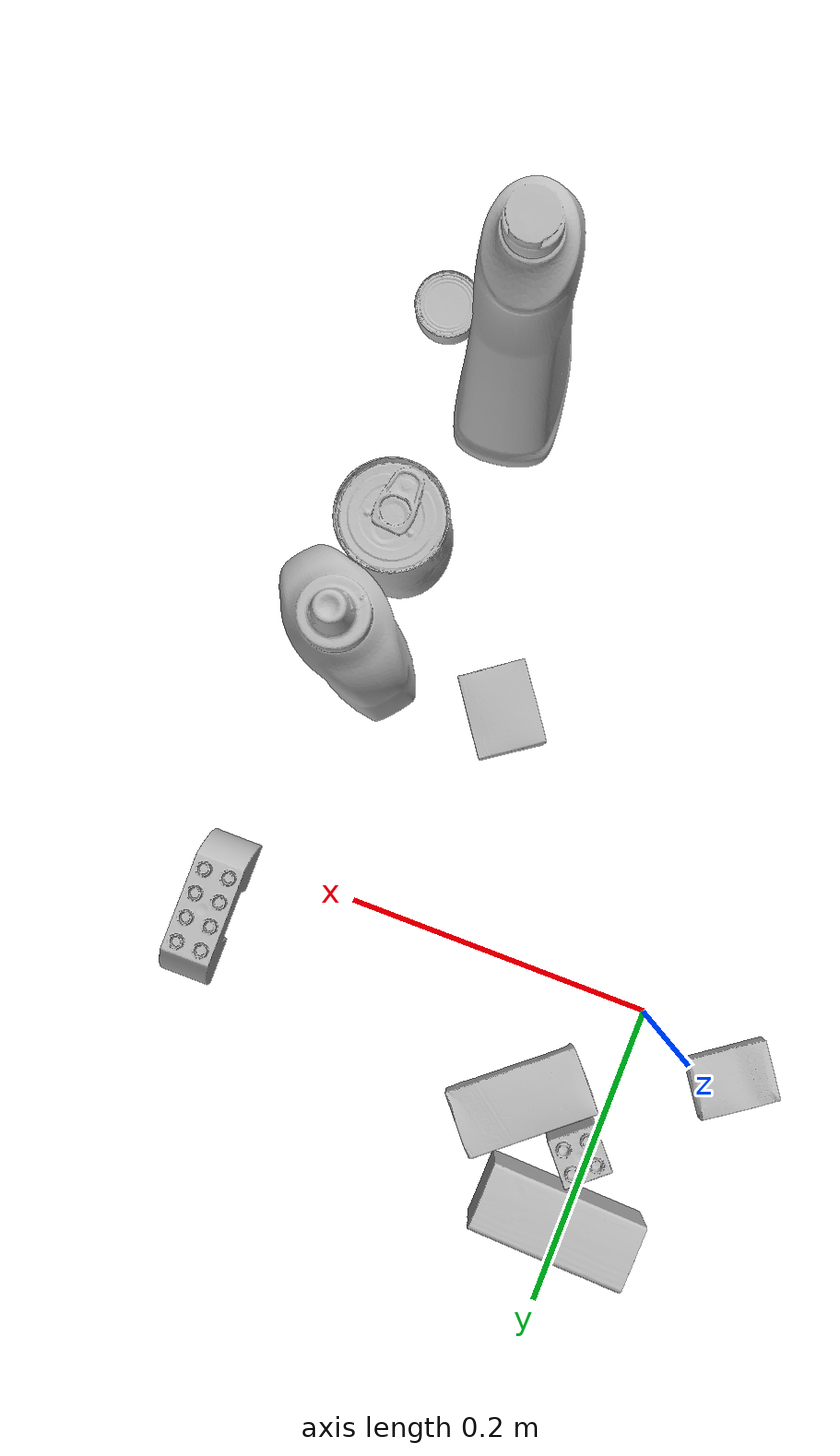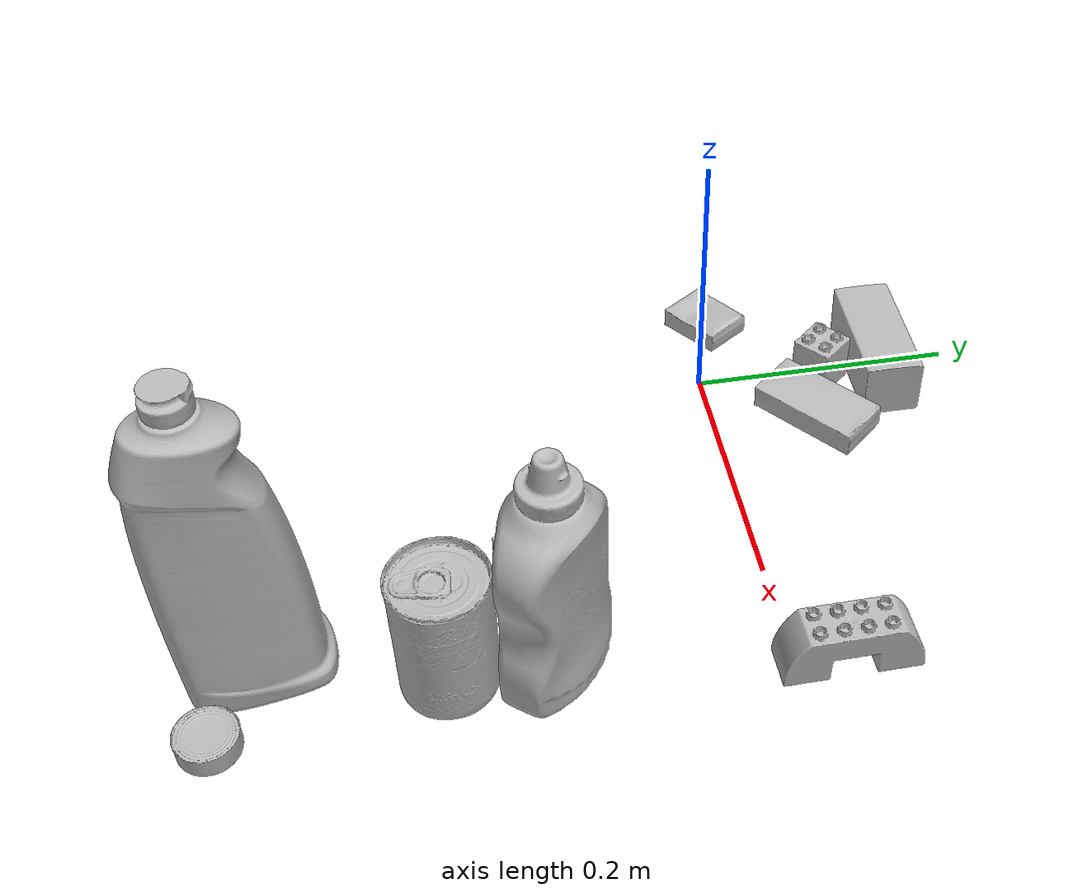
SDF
<sdf version="1.4">
  <world name="default">
    <light name="light1" type="point">
      <pose>0 0 1 0 0 0</pose>
      <diffuse>3 3 3 1</diffuse>
      <specular>3 3 3 1</specular>
    </light>
    <light name="light2" type="point">
      <pose>0 0.5 2 0 0 0</pose>
      <diffuse>1 1 1 1</diffuse>
      <specular>1 1 1 1</specular>
    </light>
    <light name="light3" type="point">
      <pose>0 0.5 2 0 0 0</pose>
      <diffuse>3 3 3 1</diffuse>
      <specular>3 3 3 1</specular>
    </light>
    <scene>
      <ambient>0.7 0.7 0.7</ambient>
    </scene>
    <model name="bottle1">
      <link name="link_bottle1">
        <collision name="default">
          <geometry>
            <mesh>
              <uri>model://bleach_cleanser/collision_meshes/collision.obj</uri>
              <scale>1.0 1.0 1.0</scale>
            </mesh>
          </geometry>
          <surface>
            <friction>
              <ode>
                <mu>0.5</mu>
                <mu2>0.5</mu2>
              </ode>
            </friction>
          <contact>
        <ode>
            <max_vel>0</max_vel>
            <min_depth>0.0001</min_depth>
            <kp>1e8</kp>
        </ode>
    </contact></surface>
        </collision>
        <visual name="default">
          <geometry>
            <mesh>
              <uri>model://bleach_cleanser/visual_meshes/visual.dae</uri>
              <scale>1.0 1.0 1.0</scale>
            </mesh>
          </geometry>
        </visual>
        <inertial>
          <mass>0.7954697608947754</mass>
          <pose>0.00012193184375064448 0.0037838825955986977 -0.02442161552608013 -0.0738167061583634 0.000420116841178447 -0.006875049257496471</pose>
          <inertia>
            <ixx>0.003871667</ixx>
            <iyy>0.0036078263</iyy>
            <izz>0.00066195446</izz>
            <ixy>0</ixy>
            <ixz>0</ixz>
            <iyz>0</iyz>
          </inertia>
        </inertial>
      </link>
      <pose>0.22141771018505096 -0.34552663564682007 0.1261208951473236 -0.004142527638943772 0.008030826901080632 -2.975127468273459</pose>
    </model>
    <model name="bottle2">
      <link name="link_bottle2">
        <collision name="default">
          <geometry>
            <mesh>
              <uri>model://mustard_bottle/collision_meshes/collision.obj</uri>
              <scale>1.0 1.0 1.0</scale>
            </mesh>
          </geometry>
          <surface>
            <friction>
              <ode>
                <mu>0.5</mu>
                <mu2>0.5</mu2>
              </ode>
            </friction>
          <contact>
        <ode>
            <max_vel>0</max_vel>
            <min_depth>0.0001</min_depth>
            <kp>1e8</kp>
        </ode>
    </contact></surface>
        </collision>
        <visual name="default">
          <geometry>
            <mesh>
              <uri>model://mustard_bottle/visual_meshes/visual.dae</uri>
              <scale>1.0 1.0 1.0</scale>
            </mesh>
          </geometry>
        </visual>
        <inertial>
          <mass>0.5118113160133362</mass>
          <pose>0.0005032453336752951 -0.00015647397958673537 -0.017475785687565804 0.0004182313596805905 0.000946575919178121 0.024853765212265823</pose>
          <inertia>
            <ixx>0.00142123</ixx>
            <iyy>0.0012470091</iyy>
            <izz>0.0003745659</izz>
            <ixy>0</ixy>
            <ixz>0</ixz>
            <iyz>0</iyz>
          </inertia>
        </inertial>
      </link>
      <pose>0.25392913818359375 -0.15316496789455414 0.09614987671375275 0.0006394862115374166 -0.0006255322555996292 0.875232582570888</pose>
    </model>
    <model name="toy1">
      <link name="link_toy1">
        <collision name="default">
          <geometry>
            <mesh>
              <uri>model://b_lego_duplo/collision_meshes/collision.obj</uri>
              <scale>1.0 1.0 1.0</scale>
            </mesh>
          </geometry>
          <surface>
            <friction>
              <ode>
                <mu>0.5</mu>
                <mu2>0.5</mu2>
              </ode>
            </friction>
          <contact>
        <ode>
            <max_vel>0</max_vel>
            <min_depth>0.0001</min_depth>
            <kp>1e8</kp>
        </ode>
    </contact></surface>
        </collision>
        <visual name="default">
          <geometry>
            <mesh>
              <uri>model://b_lego_duplo/visual_meshes/visual.dae</uri>
              <scale>1.0 1.0 1.0</scale>
            </mesh>
          </geometry>
        </visual>
        <inertial>
          <mass>0.04622781649231911</mass>
          <pose>-0.00011053043272113428 -9.152668098977301e-06 0.0019294294761493802 -0.037494565787594906 -0.026354503997733224 0.45188645636516256</pose>
          <inertia>
            <ixx>9.46087e-06</ixx>
            <iyy>9.524471e-06</iyy>
            <izz>8.429326e-06</izz>
            <ixy>0</ixy>
            <ixz>0</ixz>
            <iyz>0</iyz>
          </inertia>
        </inertial>
      </link>
      <pose>0.01014088187366724 0.09498129785060883 0.02181508205831051 5.389165495721697e-05 -4.996588898379033e-05 -0.8631174054426511</pose>
    </model>
    <model name="toy2">
      <link name="link_toy2">
        <collision name="default">
          <geometry>
            <mesh>
              <uri>model://e_lego_duplo/collision_meshes/collision.obj</uri>
              <scale>1.0 1.0 1.0</scale>
            </mesh>
          </geometry>
          <surface>
            <friction>
              <ode>
                <mu>0.5</mu>
                <mu2>0.5</mu2>
              </ode>
            </friction>
          <contact>
        <ode>
            <max_vel>0</max_vel>
            <min_depth>0.0001</min_depth>
            <kp>1e8</kp>
        </ode>
    </contact></surface>
        </collision>
        <visual name="default">
          <geometry>
            <mesh>
              <uri>model://e_lego_duplo/visual_meshes/visual.dae</uri>
              <scale>1.0 1.0 1.0</scale>
            </mesh>
          </geometry>
        </visual>
        <inertial>
          <mass>0.08809097856283188</mass>
          <pose>0.00032560486579313874 0.00023485404381062835 0.0019521467620506883 -0.022567425824888195 -6.82459351116558e-05 -0.007625145117383363</pose>
          <inertia>
            <ixx>1.836988e-05</ixx>
            <iyy>7.539474e-05</iyy>
            <izz>7.34193e-05</izz>
            <ixy>0</ixy>
            <ixz>0</ixz>
            <iyz>0</iyz>
          </inertia>
        </inertial>
      </link>
      <pose>0.283585786819458 0.03604970499873161 0.02180900052189827 8.504044875366484e-07 6.220464013781877e-08 1.5757505227539754</pose>
    </model>
    <model name="can1">
      <link name="link_can1">
        <collision name="default">
          <geometry>
            <mesh>
              <uri>model://tomato_soup_can/collision_meshes/collision.obj</uri>
              <scale>1.0 1.0 1.0</scale>
            </mesh>
          </geometry>
          <surface>
            <friction>
              <ode>
                <mu>0.5</mu>
                <mu2>0.5</mu2>
              </ode>
            </friction>
          <contact>
        <ode>
            <max_vel>0</max_vel>
            <min_depth>0.0001</min_depth>
            <kp>1e8</kp>
        </ode>
    </contact></surface>
        </collision>
        <visual name="default">
          <geometry>
            <mesh>
              <uri>model://tomato_soup_can/visual_meshes/visual.dae</uri>
              <scale>1.0 1.0 1.0</scale>
            </mesh>
          </geometry>
        </visual>
        <inertial>
          <mass>0.4347945749759674</mass>
          <pose>0.0001265227037947625 0.00010805525380419567 -0.0017973979702219367 0.007020064127759274 0.0004229940757469139 -0.009903323281130803</pose>
          <inertia>
            <ixx>0.00047671542</ixx>
            <iyy>0.00047396024</iyy>
            <izz>0.00024707714</izz>
            <ixy>0</ixy>
            <ixz>0</ixz>
            <iyz>0</iyz>
          </inertia>
        </inertial>
      </link>
      <pose>0.2532726526260376 -0.22345544397830963 0.05127400904893875 -4.2538139949396945e-07 -3.9076812219109785e-07 -0.3632837536045072</pose>
    </model>
    <model name="can2">
      <link name="link_can2">
        <collision name="default">
          <geometry>
            <mesh>
              <uri>model://tuna_fish_can/collision_meshes/collision.obj</uri>
              <scale>0.5 0.5 0.5</scale>
            </mesh>
          </geometry>
          <surface>
            <friction>
              <ode>
                <mu>0.5</mu>
                <mu2>0.5</mu2>
              </ode>
            </friction>
          <contact>
        <ode>
            <max_vel>0</max_vel>
            <min_depth>0.0001</min_depth>
            <kp>1e8</kp>
        </ode>
    </contact></surface>
        </collision>
        <visual name="default">
          <geometry>
            <mesh>
              <uri>model://tuna_fish_can/visual_meshes/visual.dae</uri>
              <scale>0.5 0.5 0.5</scale>
            </mesh>
          </geometry>
        </visual>
        <inertial>
          <mass>0.02951119653880596</mass>
          <pose>-2.0361847418826073e-05 -7.256335720740026e-06 -0.0005269026733003557 -0.0017944763161136105 0.00017161533088142807 0.2405366956082085</pose>
          <inertia>
            <ixx>3.989958e-06</ixx>
            <iyy>3.9733272e-06</iyy>
            <izz>6.827389e-06</izz>
            <ixy>0</ixy>
            <ixz>0</ixz>
            <iyz>0</iyz>
          </inertia>
        </inertial>
      </link>
      <pose>0.2788432240486145 -0.3761589527130127 0.008520000614225864 2.0954904542021138e-08 3.1653271600303323e-08 2.131818580319637</pose>
    </model>
    <model name="box1">
      <link name="link_box1">
        <collision name="default">
          <geometry>
            <mesh>
              <uri>model://sugar_box/collision_meshes/collision.obj</uri>
              <scale>0.5 0.5 0.5</scale>
            </mesh>
          </geometry>
          <surface>
            <friction>
              <ode>
                <mu>0.5</mu>
                <mu2>0.5</mu2>
              </ode>
            </friction>
          <contact>
        <ode>
            <max_vel>0</max_vel>
            <min_depth>0.0001</min_depth>
            <kp>1e8</kp>
        </ode>
    </contact></surface>
        </collision>
        <visual name="default">
          <geometry>
            <mesh>
              <uri>model://sugar_box/visual_meshes/visual.dae</uri>
              <scale>0.5 0.5 0.5</scale>
            </mesh>
          </geometry>
        </visual>
        <inertial>
          <mass>0.10932230949401855</mass>
          <pose>0.0005171863595023751 1.924554817378521e-05 -0.00018182402709499002 -0.00040462630024242077 0.0010506636385781449 0.0026153787888990553</pose>
          <inertia>
            <ixx>2.277176e-05</ixx>
            <iyy>7.3603005e-05</iyy>
            <izz>8.811158e-05</izz>
            <ixy>0</ixy>
            <ixz>0</ixz>
            <iyz>0</iyz>
          </inertia>
        </inertial>
      </link>
      <pose>0.05395195260643959 0.08050036430358887 0.011415902525186539 -0.007467556242099658 -0.019953526797484144 -2.440338557316138</pose>
    </model>
    <model name="box2">
      <link name="link_box2">
        <collision name="default">
          <geometry>
            <mesh>
              <uri>model://pudding_box/collision_meshes/collision.obj</uri>
              <scale>0.5 0.5 0.5</scale>
            </mesh>
          </geometry>
          <surface>
            <friction>
              <ode>
                <mu>0.5</mu>
                <mu2>0.5</mu2>
              </ode>
            </friction>
          <contact>
        <ode>
            <max_vel>0</max_vel>
            <min_depth>0.0001</min_depth>
            <kp>1e8</kp>
        </ode>
    </contact></surface>
        </collision>
        <visual name="default">
          <geometry>
            <mesh>
              <uri>model://pudding_box/visual_meshes/visual.dae</uri>
              <scale>0.5 0.5 0.5</scale>
            </mesh>
          </geometry>
        </visual>
        <inertial>
          <mass>0.061322033405303955</mass>
          <pose>0.00024474109522998333 0.00040339428232982755 -0.0002594413817860186 0.0052131013423229325 -0.006603797777692156 0.020079823300565562</pose>
          <inertia>
            <ixx>1.733035e-05</ixx>
            <iyy>1.1659984e-05</iyy>
            <izz>2.559279e-05</izz>
            <ixy>0</ixy>
            <ixz>0</ixz>
            <iyz>0</iyz>
          </inertia>
        </inertial>
      </link>
      <pose>0.15493395924568176 -0.14822687208652496 0.009862903505563736 0.022348247284506677 -0.011391935379159546 -2.5242135276107227</pose>
    </model>
    <model name="box3">
      <link name="link_box3">
        <collision name="default">
          <geometry>
            <mesh>
              <uri>model://cracker_box/collision_meshes/collision.obj</uri>
              <scale>0.25 0.25 0.25</scale>
            </mesh>
          </geometry>
          <surface>
            <friction>
              <ode>
                <mu>0.5</mu>
                <mu2>0.5</mu2>
              </ode>
            </friction>
          <contact>
        <ode>
            <max_vel>0</max_vel>
            <min_depth>0.0001</min_depth>
            <kp>1e8</kp>
        </ode>
    </contact></surface>
        </collision>
        <visual name="default">
          <geometry>
            <mesh>
              <uri>model://cracker_box/visual_meshes/visual.dae</uri>
              <scale>0.25 0.25 0.25</scale>
            </mesh>
          </geometry>
        </visual>
        <inertial>
          <mass>0.05027599632740021</mass>
          <pose>0.00023660380975343287 6.358561222441494e-05 -0.00042573834070935845 -0.0003162076618733006 -0.011106490531610344 0.00254679570085012</pose>
          <inertia>
            <ixx>7.992481e-06</ixx>
            <iyy>1.3197154e-05</iyy>
            <izz>1.8833553e-05</izz>
            <ixy>0</ixy>
            <ixz>0</ixz>
            <iyz>0</iyz>
          </inertia>
        </inertial>
      </link>
      <pose>-0.06678679585456848 0.019279029220342636 0.009120450355112553 -0.011787987833760233 -0.0073671906179312045 0.6093002983178096</pose>
    </model>
    <model name="box4">
      <link name="link_box4">
        <collision name="default">
          <geometry>
            <mesh>
              <uri>model://wood_block/collision_meshes/collision.obj</uri>
              <scale>0.5 0.5 0.5</scale>
            </mesh>
          </geometry>
          <surface>
            <friction>
              <ode>
                <mu>0.5</mu>
                <mu2>0.5</mu2>
              </ode>
            </friction>
          <contact>
        <ode>
            <max_vel>0</max_vel>
            <min_depth>0.0001</min_depth>
            <kp>1e8</kp>
        </ode>
    </contact></surface>
        </collision>
        <visual name="default">
          <geometry>
            <mesh>
              <uri>model://wood_block/visual_meshes/visual.dae</uri>
              <scale>0.5 0.5 0.5</scale>
            </mesh>
          </geometry>
        </visual>
        <inertial>
          <mass>0.30035653710365295</mass>
          <pose>-2.9066577553749084e-06 -0.000285404734313488 0.00013204291462898254 -0.05221128362191582 -0.005192695718477931 -0.0068613783725326285</pose>
          <inertia>
            <ixx>0.00010048062</ixx>
            <iyy>0.00031741828</iyy>
            <izz>0.00031623102</izz>
            <ixy>0</ixy>
            <ixz>0</ixz>
            <iyz>0</iyz>
          </inertia>
        </inertial>
      </link>
      <pose>0.008011041209101677 0.14033979177474976 0.022527478635311127 -0.01584567649423102 -0.00040087305268267717 3.1099230056086387</pose>
    </model>
  <physics type="ode">
      <max_contacts>50</max_contacts>
      <ode>
        <solver>
          <type>quick</type>
          <iters>75</iters>
        </solver>
        <constraints>
          <contact_max_correcting_vel>0</contact_max_correcting_vel>
          <contact_surface_layer>0</contact_surface_layer>
        </constraints>
      </ode>
    </physics></world>
</sdf>
